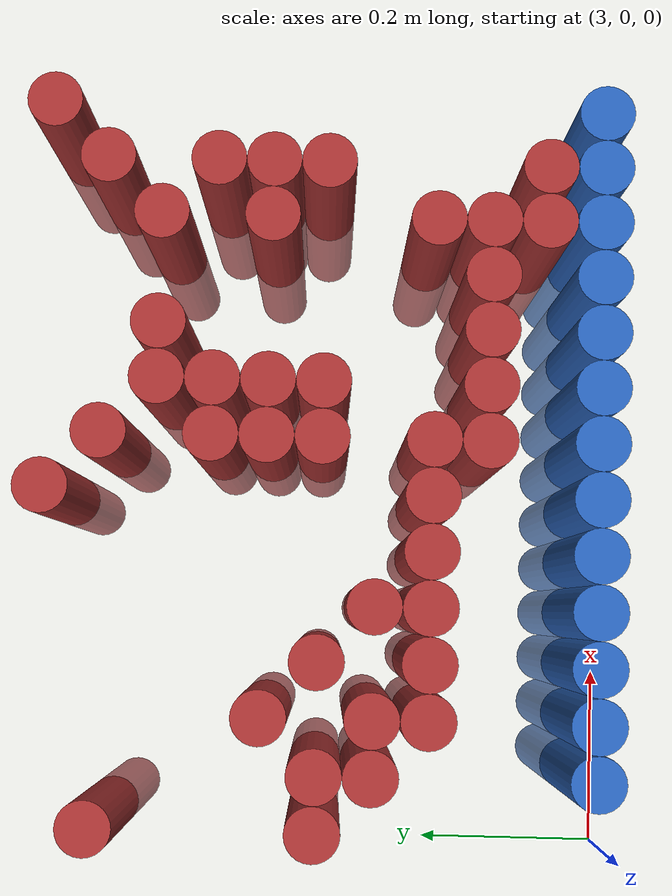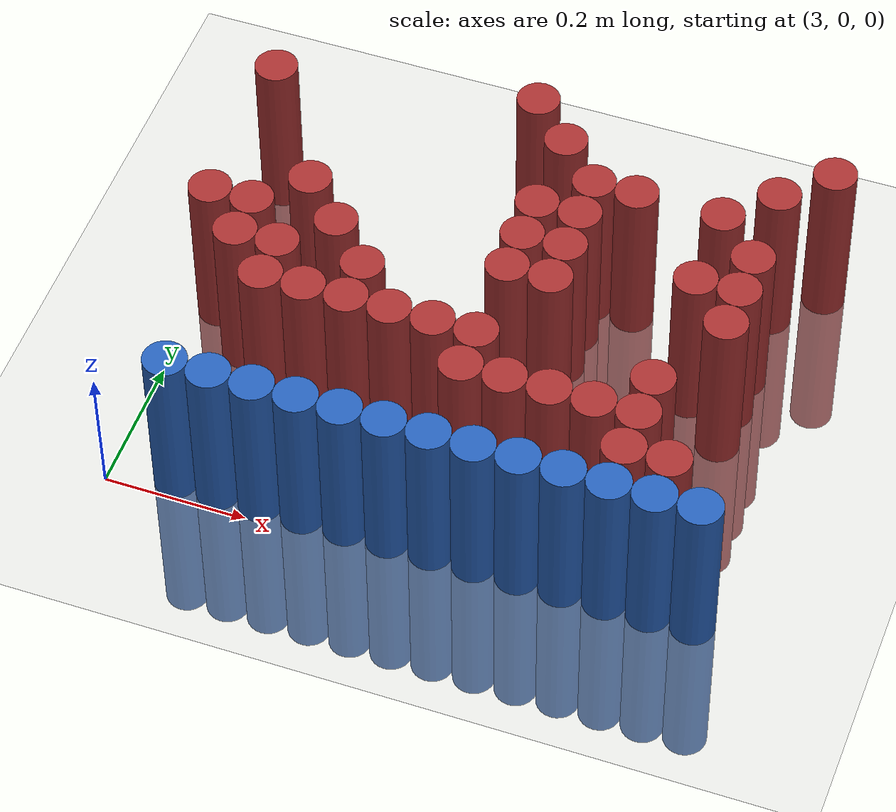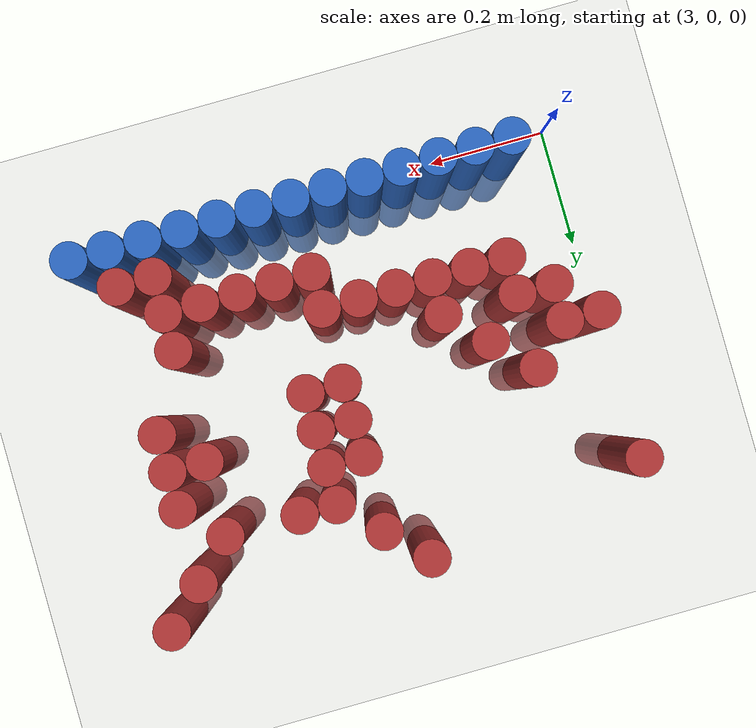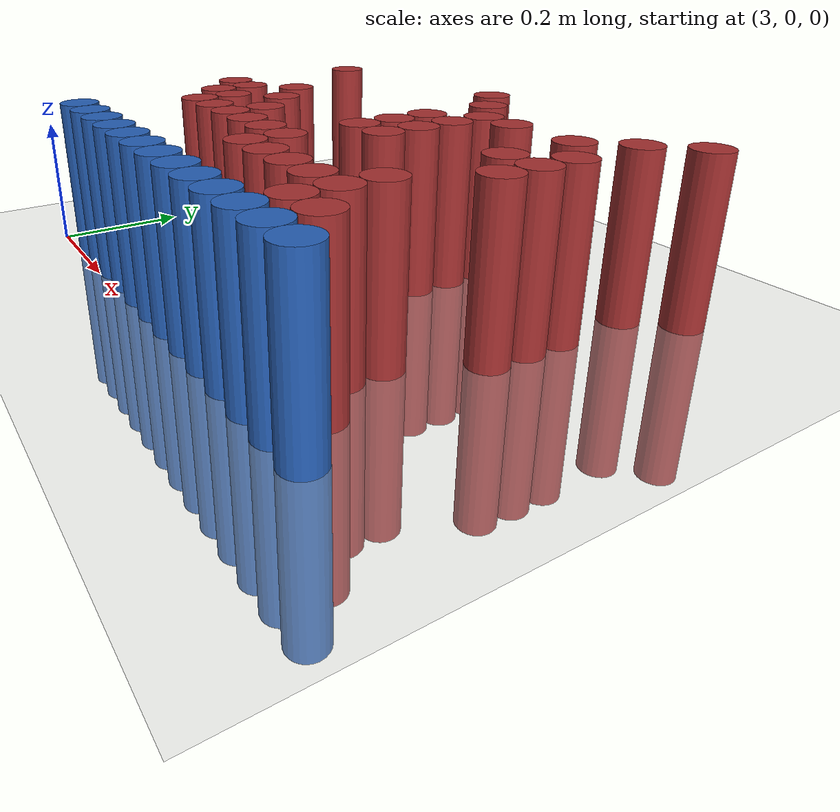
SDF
<sdf version="1.6">
 <world name="default">
  <model name="ground_plane">
   <static>1</static>
   <link name="link">
    <collision name="collision">
     <geometry><plane><normal>0 0 1</normal><size>100 100</size></plane></geometry>
     <surface><friction><ode><mu>100</mu><mu2>50</mu2></ode></friction></surface>
    </collision>
    <visual name="visual">
     <cast_shadows>0</cast_shadows>
     <geometry><plane><normal>0 0 1</normal><size>100 100</size></plane></geometry>
     <material>
      <script><uri>file://media/materials/scripts/gazebo.material</uri><name>Gazebo/Grey</name></script>
     </material>
    </visual>
   </link>
  </model>
  <model name="unit_cylinder_237">
   <static>1</static>
   <pose>3.390000 0.630000 0.000000 0.000000 0.000000 0.000000</pose>
   <link name="link">
    <inertial>
     <mass>1</mass>
     <inertia><ixx>0.145833</ixx><ixy>0</ixy><ixz>0</ixz><iyy>0.145833</iyy><iyz>0</iyz><izz>0.125</izz></inertia>
    </inertial>
    <collision name="collision">
     <geometry><cylinder><radius>0.030000</radius><length>0.5</length></cylinder></geometry>
    </collision>
    <visual name="visual">
     <geometry><cylinder><radius>0.030000</radius><length>0.5</length></cylinder></geometry>
     <material>
      <ambient>0.648000 0.192000 0.192000 1</ambient>
      <diffuse>0.648000 0.192000 0.192000 1</diffuse>
     </material>
     <material>
      <script><name>Gazebo/Grey</name><uri>file://media/materials/scripts/gazebo.material</uri></script>
     </material>
    </visual>
   </link>
  </model>
  <model name="unit_cylinder_238">
   <static>1</static>
   <pose>3.810000 0.630000 0.000000 0.000000 0.000000 0.000000</pose>
   <link name="link">
    <inertial>
     <mass>1</mass>
     <inertia><ixx>0.145833</ixx><ixy>0</ixy><ixz>0</ixz><iyy>0.145833</iyy><iyz>0</iyz><izz>0.125</izz></inertia>
    </inertial>
    <collision name="collision">
     <geometry><cylinder><radius>0.030000</radius><length>0.5</length></cylinder></geometry>
    </collision>
    <visual name="visual">
     <geometry><cylinder><radius>0.030000</radius><length>0.5</length></cylinder></geometry>
     <material>
      <ambient>0.648000 0.192000 0.192000 1</ambient>
      <diffuse>0.648000 0.192000 0.192000 1</diffuse>
     </material>
     <material>
      <script><name>Gazebo/Grey</name><uri>file://media/materials/scripts/gazebo.material</uri></script>
     </material>
    </visual>
   </link>
  </model>
  <model name="unit_cylinder_248">
   <static>1</static>
   <pose>3.030000 0.570000 0.000000 0.000000 0.000000 0.000000</pose>
   <link name="link">
    <inertial>
     <mass>1</mass>
     <inertia><ixx>0.145833</ixx><ixy>0</ixy><ixz>0</ixz><iyy>0.145833</iyy><iyz>0</iyz><izz>0.125</izz></inertia>
    </inertial>
    <collision name="collision">
     <geometry><cylinder><radius>0.030000</radius><length>0.5</length></cylinder></geometry>
    </collision>
    <visual name="visual">
     <geometry><cylinder><radius>0.030000</radius><length>0.5</length></cylinder></geometry>
     <material>
      <ambient>0.648000 0.192000 0.192000 1</ambient>
      <diffuse>0.648000 0.192000 0.192000 1</diffuse>
     </material>
     <material>
      <script><name>Gazebo/Grey</name><uri>file://media/materials/scripts/gazebo.material</uri></script>
     </material>
    </visual>
   </link>
  </model>
  <model name="unit_cylinder_249">
   <static>1</static>
   <pose>3.450000 0.570000 0.000000 0.000000 0.000000 0.000000</pose>
   <link name="link">
    <inertial>
     <mass>1</mass>
     <inertia><ixx>0.145833</ixx><ixy>0</ixy><ixz>0</ixz><iyy>0.145833</iyy><iyz>0</iyz><izz>0.125</izz></inertia>
    </inertial>
    <collision name="collision">
     <geometry><cylinder><radius>0.030000</radius><length>0.5</length></cylinder></geometry>
    </collision>
    <visual name="visual">
     <geometry><cylinder><radius>0.030000</radius><length>0.5</length></cylinder></geometry>
     <material>
      <ambient>0.648000 0.192000 0.192000 1</ambient>
      <diffuse>0.648000 0.192000 0.192000 1</diffuse>
     </material>
     <material>
      <script><name>Gazebo/Grey</name><uri>file://media/materials/scripts/gazebo.material</uri></script>
     </material>
    </visual>
   </link>
  </model>
  <model name="unit_cylinder_250">
   <static>1</static>
   <pose>3.750000 0.570000 0.000000 0.000000 0.000000 0.000000</pose>
   <link name="link">
    <inertial>
     <mass>1</mass>
     <inertia><ixx>0.145833</ixx><ixy>0</ixy><ixz>0</ixz><iyy>0.145833</iyy><iyz>0</iyz><izz>0.125</izz></inertia>
    </inertial>
    <collision name="collision">
     <geometry><cylinder><radius>0.030000</radius><length>0.5</length></cylinder></geometry>
    </collision>
    <visual name="visual">
     <geometry><cylinder><radius>0.030000</radius><length>0.5</length></cylinder></geometry>
     <material>
      <ambient>0.648000 0.192000 0.192000 1</ambient>
      <diffuse>0.648000 0.192000 0.192000 1</diffuse>
     </material>
     <material>
      <script><name>Gazebo/Grey</name><uri>file://media/materials/scripts/gazebo.material</uri></script>
     </material>
    </visual>
   </link>
  </model>
  <model name="unit_cylinder_261">
   <static>1</static>
   <pose>3.510000 0.510000 0.000000 0.000000 0.000000 0.000000</pose>
   <link name="link">
    <inertial>
     <mass>1</mass>
     <inertia><ixx>0.145833</ixx><ixy>0</ixy><ixz>0</ixz><iyy>0.145833</iyy><iyz>0</iyz><izz>0.125</izz></inertia>
    </inertial>
    <collision name="collision">
     <geometry><cylinder><radius>0.030000</radius><length>0.5</length></cylinder></geometry>
    </collision>
    <visual name="visual">
     <geometry><cylinder><radius>0.030000</radius><length>0.5</length></cylinder></geometry>
     <material>
      <ambient>0.648000 0.192000 0.192000 1</ambient>
      <diffuse>0.648000 0.192000 0.192000 1</diffuse>
     </material>
     <material>
      <script><name>Gazebo/Grey</name><uri>file://media/materials/scripts/gazebo.material</uri></script>
     </material>
    </visual>
   </link>
  </model>
  <model name="unit_cylinder_262">
   <static>1</static>
   <pose>3.570000 0.510000 0.000000 0.000000 0.000000 0.000000</pose>
   <link name="link">
    <inertial>
     <mass>1</mass>
     <inertia><ixx>0.145833</ixx><ixy>0</ixy><ixz>0</ixz><iyy>0.145833</iyy><iyz>0</iyz><izz>0.125</izz></inertia>
    </inertial>
    <collision name="collision">
     <geometry><cylinder><radius>0.030000</radius><length>0.5</length></cylinder></geometry>
    </collision>
    <visual name="visual">
     <geometry><cylinder><radius>0.030000</radius><length>0.5</length></cylinder></geometry>
     <material>
      <ambient>0.648000 0.192000 0.192000 1</ambient>
      <diffuse>0.648000 0.192000 0.192000 1</diffuse>
     </material>
     <material>
      <script><name>Gazebo/Grey</name><uri>file://media/materials/scripts/gazebo.material</uri></script>
     </material>
    </visual>
   </link>
  </model>
  <model name="unit_cylinder_263">
   <static>1</static>
   <pose>3.690000 0.510000 0.000000 0.000000 0.000000 0.000000</pose>
   <link name="link">
    <inertial>
     <mass>1</mass>
     <inertia><ixx>0.145833</ixx><ixy>0</ixy><ixz>0</ixz><iyy>0.145833</iyy><iyz>0</iyz><izz>0.125</izz></inertia>
    </inertial>
    <collision name="collision">
     <geometry><cylinder><radius>0.030000</radius><length>0.5</length></cylinder></geometry>
    </collision>
    <visual name="visual">
     <geometry><cylinder><radius>0.030000</radius><length>0.5</length></cylinder></geometry>
     <material>
      <ambient>0.648000 0.192000 0.192000 1</ambient>
      <diffuse>0.648000 0.192000 0.192000 1</diffuse>
     </material>
     <material>
      <script><name>Gazebo/Grey</name><uri>file://media/materials/scripts/gazebo.material</uri></script>
     </material>
    </visual>
   </link>
  </model>
  <model name="unit_cylinder_269">
   <static>1</static>
   <pose>3.450000 0.450000 0.000000 0.000000 0.000000 0.000000</pose>
   <link name="link">
    <inertial>
     <mass>1</mass>
     <inertia><ixx>0.145833</ixx><ixy>0</ixy><ixz>0</ixz><iyy>0.145833</iyy><iyz>0</iyz><izz>0.125</izz></inertia>
    </inertial>
    <collision name="collision">
     <geometry><cylinder><radius>0.030000</radius><length>0.5</length></cylinder></geometry>
    </collision>
    <visual name="visual">
     <geometry><cylinder><radius>0.030000</radius><length>0.5</length></cylinder></geometry>
     <material>
      <ambient>0.648000 0.192000 0.192000 1</ambient>
      <diffuse>0.648000 0.192000 0.192000 1</diffuse>
     </material>
     <material>
      <script><name>Gazebo/Grey</name><uri>file://media/materials/scripts/gazebo.material</uri></script>
     </material>
    </visual>
   </link>
  </model>
  <model name="unit_cylinder_270">
   <static>1</static>
   <pose>3.510000 0.450000 0.000000 0.000000 0.000000 0.000000</pose>
   <link name="link">
    <inertial>
     <mass>1</mass>
     <inertia><ixx>0.145833</ixx><ixy>0</ixy><ixz>0</ixz><iyy>0.145833</iyy><iyz>0</iyz><izz>0.125</izz></inertia>
    </inertial>
    <collision name="collision">
     <geometry><cylinder><radius>0.030000</radius><length>0.5</length></cylinder></geometry>
    </collision>
    <visual name="visual">
     <geometry><cylinder><radius>0.030000</radius><length>0.5</length></cylinder></geometry>
     <material>
      <ambient>0.648000 0.192000 0.192000 1</ambient>
      <diffuse>0.648000 0.192000 0.192000 1</diffuse>
     </material>
     <material>
      <script><name>Gazebo/Grey</name><uri>file://media/materials/scripts/gazebo.material</uri></script>
     </material>
    </visual>
   </link>
  </model>
  <model name="unit_cylinder_271">
   <static>1</static>
   <pose>3.750000 0.450000 0.000000 0.000000 0.000000 0.000000</pose>
   <link name="link">
    <inertial>
     <mass>1</mass>
     <inertia><ixx>0.145833</ixx><ixy>0</ixy><ixz>0</ixz><iyy>0.145833</iyy><iyz>0</iyz><izz>0.125</izz></inertia>
    </inertial>
    <collision name="collision">
     <geometry><cylinder><radius>0.030000</radius><length>0.5</length></cylinder></geometry>
    </collision>
    <visual name="visual">
     <geometry><cylinder><radius>0.030000</radius><length>0.5</length></cylinder></geometry>
     <material>
      <ambient>0.648000 0.192000 0.192000 1</ambient>
      <diffuse>0.648000 0.192000 0.192000 1</diffuse>
     </material>
     <material>
      <script><name>Gazebo/Grey</name><uri>file://media/materials/scripts/gazebo.material</uri></script>
     </material>
    </visual>
   </link>
  </model>
  <model name="unit_cylinder_275">
   <static>1</static>
   <pose>3.150000 0.390000 0.000000 0.000000 0.000000 0.000000</pose>
   <link name="link">
    <inertial>
     <mass>1</mass>
     <inertia><ixx>0.145833</ixx><ixy>0</ixy><ixz>0</ixz><iyy>0.145833</iyy><iyz>0</iyz><izz>0.125</izz></inertia>
    </inertial>
    <collision name="collision">
     <geometry><cylinder><radius>0.030000</radius><length>0.5</length></cylinder></geometry>
    </collision>
    <visual name="visual">
     <geometry><cylinder><radius>0.030000</radius><length>0.5</length></cylinder></geometry>
     <material>
      <ambient>0.648000 0.192000 0.192000 1</ambient>
      <diffuse>0.648000 0.192000 0.192000 1</diffuse>
     </material>
     <material>
      <script><name>Gazebo/Grey</name><uri>file://media/materials/scripts/gazebo.material</uri></script>
     </material>
    </visual>
   </link>
  </model>
  <model name="unit_cylinder_276">
   <static>1</static>
   <pose>3.450000 0.390000 0.000000 0.000000 0.000000 0.000000</pose>
   <link name="link">
    <inertial>
     <mass>1</mass>
     <inertia><ixx>0.145833</ixx><ixy>0</ixy><ixz>0</ixz><iyy>0.145833</iyy><iyz>0</iyz><izz>0.125</izz></inertia>
    </inertial>
    <collision name="collision">
     <geometry><cylinder><radius>0.030000</radius><length>0.5</length></cylinder></geometry>
    </collision>
    <visual name="visual">
     <geometry><cylinder><radius>0.030000</radius><length>0.5</length></cylinder></geometry>
     <material>
      <ambient>0.648000 0.192000 0.192000 1</ambient>
      <diffuse>0.648000 0.192000 0.192000 1</diffuse>
     </material>
     <material>
      <script><name>Gazebo/Grey</name><uri>file://media/materials/scripts/gazebo.material</uri></script>
     </material>
    </visual>
   </link>
  </model>
  <model name="unit_cylinder_277">
   <static>1</static>
   <pose>3.510000 0.390000 0.000000 0.000000 0.000000 0.000000</pose>
   <link name="link">
    <inertial>
     <mass>1</mass>
     <inertia><ixx>0.145833</ixx><ixy>0</ixy><ixz>0</ixz><iyy>0.145833</iyy><iyz>0</iyz><izz>0.125</izz></inertia>
    </inertial>
    <collision name="collision">
     <geometry><cylinder><radius>0.030000</radius><length>0.5</length></cylinder></geometry>
    </collision>
    <visual name="visual">
     <geometry><cylinder><radius>0.030000</radius><length>0.5</length></cylinder></geometry>
     <material>
      <ambient>0.648000 0.192000 0.192000 1</ambient>
      <diffuse>0.648000 0.192000 0.192000 1</diffuse>
     </material>
     <material>
      <script><name>Gazebo/Grey</name><uri>file://media/materials/scripts/gazebo.material</uri></script>
     </material>
    </visual>
   </link>
  </model>
  <model name="unit_cylinder_278">
   <static>1</static>
   <pose>3.690000 0.390000 0.000000 0.000000 0.000000 0.000000</pose>
   <link name="link">
    <inertial>
     <mass>1</mass>
     <inertia><ixx>0.145833</ixx><ixy>0</ixy><ixz>0</ixz><iyy>0.145833</iyy><iyz>0</iyz><izz>0.125</izz></inertia>
    </inertial>
    <collision name="collision">
     <geometry><cylinder><radius>0.030000</radius><length>0.5</length></cylinder></geometry>
    </collision>
    <visual name="visual">
     <geometry><cylinder><radius>0.030000</radius><length>0.5</length></cylinder></geometry>
     <material>
      <ambient>0.648000 0.192000 0.192000 1</ambient>
      <diffuse>0.648000 0.192000 0.192000 1</diffuse>
     </material>
     <material>
      <script><name>Gazebo/Grey</name><uri>file://media/materials/scripts/gazebo.material</uri></script>
     </material>
    </visual>
   </link>
  </model>
  <model name="unit_cylinder_279">
   <static>1</static>
   <pose>3.750000 0.390000 0.000000 0.000000 0.000000 0.000000</pose>
   <link name="link">
    <inertial>
     <mass>1</mass>
     <inertia><ixx>0.145833</ixx><ixy>0</ixy><ixz>0</ixz><iyy>0.145833</iyy><iyz>0</iyz><izz>0.125</izz></inertia>
    </inertial>
    <collision name="collision">
     <geometry><cylinder><radius>0.030000</radius><length>0.5</length></cylinder></geometry>
    </collision>
    <visual name="visual">
     <geometry><cylinder><radius>0.030000</radius><length>0.5</length></cylinder></geometry>
     <material>
      <ambient>0.648000 0.192000 0.192000 1</ambient>
      <diffuse>0.648000 0.192000 0.192000 1</diffuse>
     </material>
     <material>
      <script><name>Gazebo/Grey</name><uri>file://media/materials/scripts/gazebo.material</uri></script>
     </material>
    </visual>
   </link>
  </model>
  <model name="unit_cylinder_281">
   <static>1</static>
   <pose>3.030000 0.330000 0.000000 0.000000 0.000000 0.000000</pose>
   <link name="link">
    <inertial>
     <mass>1</mass>
     <inertia><ixx>0.145833</ixx><ixy>0</ixy><ixz>0</ixz><iyy>0.145833</iyy><iyz>0</iyz><izz>0.125</izz></inertia>
    </inertial>
    <collision name="collision">
     <geometry><cylinder><radius>0.030000</radius><length>0.5</length></cylinder></geometry>
    </collision>
    <visual name="visual">
     <geometry><cylinder><radius>0.030000</radius><length>0.5</length></cylinder></geometry>
     <material>
      <ambient>0.648000 0.192000 0.192000 1</ambient>
      <diffuse>0.648000 0.192000 0.192000 1</diffuse>
     </material>
     <material>
      <script><name>Gazebo/Grey</name><uri>file://media/materials/scripts/gazebo.material</uri></script>
     </material>
    </visual>
   </link>
  </model>
  <model name="unit_cylinder_282">
   <static>1</static>
   <pose>3.090000 0.330000 0.000000 0.000000 0.000000 0.000000</pose>
   <link name="link">
    <inertial>
     <mass>1</mass>
     <inertia><ixx>0.145833</ixx><ixy>0</ixy><ixz>0</ixz><iyy>0.145833</iyy><iyz>0</iyz><izz>0.125</izz></inertia>
    </inertial>
    <collision name="collision">
     <geometry><cylinder><radius>0.030000</radius><length>0.5</length></cylinder></geometry>
    </collision>
    <visual name="visual">
     <geometry><cylinder><radius>0.030000</radius><length>0.5</length></cylinder></geometry>
     <material>
      <ambient>0.648000 0.192000 0.192000 1</ambient>
      <diffuse>0.648000 0.192000 0.192000 1</diffuse>
     </material>
     <material>
      <script><name>Gazebo/Grey</name><uri>file://media/materials/scripts/gazebo.material</uri></script>
     </material>
    </visual>
   </link>
  </model>
  <model name="unit_cylinder_283">
   <static>1</static>
   <pose>3.210000 0.330000 0.000000 0.000000 0.000000 0.000000</pose>
   <link name="link">
    <inertial>
     <mass>1</mass>
     <inertia><ixx>0.145833</ixx><ixy>0</ixy><ixz>0</ixz><iyy>0.145833</iyy><iyz>0</iyz><izz>0.125</izz></inertia>
    </inertial>
    <collision name="collision">
     <geometry><cylinder><radius>0.030000</radius><length>0.5</length></cylinder></geometry>
    </collision>
    <visual name="visual">
     <geometry><cylinder><radius>0.030000</radius><length>0.5</length></cylinder></geometry>
     <material>
      <ambient>0.648000 0.192000 0.192000 1</ambient>
      <diffuse>0.648000 0.192000 0.192000 1</diffuse>
     </material>
     <material>
      <script><name>Gazebo/Grey</name><uri>file://media/materials/scripts/gazebo.material</uri></script>
     </material>
    </visual>
   </link>
  </model>
  <model name="unit_cylinder_284">
   <static>1</static>
   <pose>3.450000 0.330000 0.000000 0.000000 0.000000 0.000000</pose>
   <link name="link">
    <inertial>
     <mass>1</mass>
     <inertia><ixx>0.145833</ixx><ixy>0</ixy><ixz>0</ixz><iyy>0.145833</iyy><iyz>0</iyz><izz>0.125</izz></inertia>
    </inertial>
    <collision name="collision">
     <geometry><cylinder><radius>0.030000</radius><length>0.5</length></cylinder></geometry>
    </collision>
    <visual name="visual">
     <geometry><cylinder><radius>0.030000</radius><length>0.5</length></cylinder></geometry>
     <material>
      <ambient>0.648000 0.192000 0.192000 1</ambient>
      <diffuse>0.648000 0.192000 0.192000 1</diffuse>
     </material>
     <material>
      <script><name>Gazebo/Grey</name><uri>file://media/materials/scripts/gazebo.material</uri></script>
     </material>
    </visual>
   </link>
  </model>
  <model name="unit_cylinder_285">
   <static>1</static>
   <pose>3.510000 0.330000 0.000000 0.000000 0.000000 0.000000</pose>
   <link name="link">
    <inertial>
     <mass>1</mass>
     <inertia><ixx>0.145833</ixx><ixy>0</ixy><ixz>0</ixz><iyy>0.145833</iyy><iyz>0</iyz><izz>0.125</izz></inertia>
    </inertial>
    <collision name="collision">
     <geometry><cylinder><radius>0.030000</radius><length>0.5</length></cylinder></geometry>
    </collision>
    <visual name="visual">
     <geometry><cylinder><radius>0.030000</radius><length>0.5</length></cylinder></geometry>
     <material>
      <ambient>0.648000 0.192000 0.192000 1</ambient>
      <diffuse>0.648000 0.192000 0.192000 1</diffuse>
     </material>
     <material>
      <script><name>Gazebo/Grey</name><uri>file://media/materials/scripts/gazebo.material</uri></script>
     </material>
    </visual>
   </link>
  </model>
  <model name="unit_cylinder_286">
   <static>1</static>
   <pose>3.750000 0.330000 0.000000 0.000000 0.000000 0.000000</pose>
   <link name="link">
    <inertial>
     <mass>1</mass>
     <inertia><ixx>0.145833</ixx><ixy>0</ixy><ixz>0</ixz><iyy>0.145833</iyy><iyz>0</iyz><izz>0.125</izz></inertia>
    </inertial>
    <collision name="collision">
     <geometry><cylinder><radius>0.030000</radius><length>0.5</length></cylinder></geometry>
    </collision>
    <visual name="visual">
     <geometry><cylinder><radius>0.030000</radius><length>0.5</length></cylinder></geometry>
     <material>
      <ambient>0.648000 0.192000 0.192000 1</ambient>
      <diffuse>0.648000 0.192000 0.192000 1</diffuse>
     </material>
     <material>
      <script><name>Gazebo/Grey</name><uri>file://media/materials/scripts/gazebo.material</uri></script>
     </material>
    </visual>
   </link>
  </model>
  <model name="unit_cylinder_292">
   <static>1</static>
   <pose>3.090000 0.270000 0.000000 0.000000 0.000000 0.000000</pose>
   <link name="link">
    <inertial>
     <mass>1</mass>
     <inertia><ixx>0.145833</ixx><ixy>0</ixy><ixz>0</ixz><iyy>0.145833</iyy><iyz>0</iyz><izz>0.125</izz></inertia>
    </inertial>
    <collision name="collision">
     <geometry><cylinder><radius>0.030000</radius><length>0.5</length></cylinder></geometry>
    </collision>
    <visual name="visual">
     <geometry><cylinder><radius>0.030000</radius><length>0.5</length></cylinder></geometry>
     <material>
      <ambient>0.648000 0.192000 0.192000 1</ambient>
      <diffuse>0.648000 0.192000 0.192000 1</diffuse>
     </material>
     <material>
      <script><name>Gazebo/Grey</name><uri>file://media/materials/scripts/gazebo.material</uri></script>
     </material>
    </visual>
   </link>
  </model>
  <model name="unit_cylinder_293">
   <static>1</static>
   <pose>3.150000 0.270000 0.000000 0.000000 0.000000 0.000000</pose>
   <link name="link">
    <inertial>
     <mass>1</mass>
     <inertia><ixx>0.145833</ixx><ixy>0</ixy><ixz>0</ixz><iyy>0.145833</iyy><iyz>0</iyz><izz>0.125</izz></inertia>
    </inertial>
    <collision name="collision">
     <geometry><cylinder><radius>0.030000</radius><length>0.5</length></cylinder></geometry>
    </collision>
    <visual name="visual">
     <geometry><cylinder><radius>0.030000</radius><length>0.5</length></cylinder></geometry>
     <material>
      <ambient>0.648000 0.192000 0.192000 1</ambient>
      <diffuse>0.648000 0.192000 0.192000 1</diffuse>
     </material>
     <material>
      <script><name>Gazebo/Grey</name><uri>file://media/materials/scripts/gazebo.material</uri></script>
     </material>
    </visual>
   </link>
  </model>
  <model name="unit_cylinder_294">
   <static>1</static>
   <pose>3.270000 0.270000 0.000000 0.000000 0.000000 0.000000</pose>
   <link name="link">
    <inertial>
     <mass>1</mass>
     <inertia><ixx>0.145833</ixx><ixy>0</ixy><ixz>0</ixz><iyy>0.145833</iyy><iyz>0</iyz><izz>0.125</izz></inertia>
    </inertial>
    <collision name="collision">
     <geometry><cylinder><radius>0.030000</radius><length>0.5</length></cylinder></geometry>
    </collision>
    <visual name="visual">
     <geometry><cylinder><radius>0.030000</radius><length>0.5</length></cylinder></geometry>
     <material>
      <ambient>0.648000 0.192000 0.192000 1</ambient>
      <diffuse>0.648000 0.192000 0.192000 1</diffuse>
     </material>
     <material>
      <script><name>Gazebo/Grey</name><uri>file://media/materials/scripts/gazebo.material</uri></script>
     </material>
    </visual>
   </link>
  </model>
  <model name="unit_cylinder_301">
   <static>1</static>
   <pose>3.150000 0.210000 0.000000 0.000000 0.000000 0.000000</pose>
   <link name="link">
    <inertial>
     <mass>1</mass>
     <inertia><ixx>0.145833</ixx><ixy>0</ixy><ixz>0</ixz><iyy>0.145833</iyy><iyz>0</iyz><izz>0.125</izz></inertia>
    </inertial>
    <collision name="collision">
     <geometry><cylinder><radius>0.030000</radius><length>0.5</length></cylinder></geometry>
    </collision>
    <visual name="visual">
     <geometry><cylinder><radius>0.030000</radius><length>0.5</length></cylinder></geometry>
     <material>
      <ambient>0.648000 0.192000 0.192000 1</ambient>
      <diffuse>0.648000 0.192000 0.192000 1</diffuse>
     </material>
     <material>
      <script><name>Gazebo/Grey</name><uri>file://media/materials/scripts/gazebo.material</uri></script>
     </material>
    </visual>
   </link>
  </model>
  <model name="unit_cylinder_302">
   <static>1</static>
   <pose>3.210000 0.210000 0.000000 0.000000 0.000000 0.000000</pose>
   <link name="link">
    <inertial>
     <mass>1</mass>
     <inertia><ixx>0.145833</ixx><ixy>0</ixy><ixz>0</ixz><iyy>0.145833</iyy><iyz>0</iyz><izz>0.125</izz></inertia>
    </inertial>
    <collision name="collision">
     <geometry><cylinder><radius>0.030000</radius><length>0.5</length></cylinder></geometry>
    </collision>
    <visual name="visual">
     <geometry><cylinder><radius>0.030000</radius><length>0.5</length></cylinder></geometry>
     <material>
      <ambient>0.648000 0.192000 0.192000 1</ambient>
      <diffuse>0.648000 0.192000 0.192000 1</diffuse>
     </material>
     <material>
      <script><name>Gazebo/Grey</name><uri>file://media/materials/scripts/gazebo.material</uri></script>
     </material>
    </visual>
   </link>
  </model>
  <model name="unit_cylinder_303">
   <static>1</static>
   <pose>3.270000 0.210000 0.000000 0.000000 0.000000 0.000000</pose>
   <link name="link">
    <inertial>
     <mass>1</mass>
     <inertia><ixx>0.145833</ixx><ixy>0</ixy><ixz>0</ixz><iyy>0.145833</iyy><iyz>0</iyz><izz>0.125</izz></inertia>
    </inertial>
    <collision name="collision">
     <geometry><cylinder><radius>0.030000</radius><length>0.5</length></cylinder></geometry>
    </collision>
    <visual name="visual">
     <geometry><cylinder><radius>0.030000</radius><length>0.5</length></cylinder></geometry>
     <material>
      <ambient>0.648000 0.192000 0.192000 1</ambient>
      <diffuse>0.648000 0.192000 0.192000 1</diffuse>
     </material>
     <material>
      <script><name>Gazebo/Grey</name><uri>file://media/materials/scripts/gazebo.material</uri></script>
     </material>
    </visual>
   </link>
  </model>
  <model name="unit_cylinder_304">
   <static>1</static>
   <pose>3.330000 0.210000 0.000000 0.000000 0.000000 0.000000</pose>
   <link name="link">
    <inertial>
     <mass>1</mass>
     <inertia><ixx>0.145833</ixx><ixy>0</ixy><ixz>0</ixz><iyy>0.145833</iyy><iyz>0</iyz><izz>0.125</izz></inertia>
    </inertial>
    <collision name="collision">
     <geometry><cylinder><radius>0.030000</radius><length>0.5</length></cylinder></geometry>
    </collision>
    <visual name="visual">
     <geometry><cylinder><radius>0.030000</radius><length>0.5</length></cylinder></geometry>
     <material>
      <ambient>0.648000 0.192000 0.192000 1</ambient>
      <diffuse>0.648000 0.192000 0.192000 1</diffuse>
     </material>
     <material>
      <script><name>Gazebo/Grey</name><uri>file://media/materials/scripts/gazebo.material</uri></script>
     </material>
    </visual>
   </link>
  </model>
  <model name="unit_cylinder_305">
   <static>1</static>
   <pose>3.390000 0.210000 0.000000 0.000000 0.000000 0.000000</pose>
   <link name="link">
    <inertial>
     <mass>1</mass>
     <inertia><ixx>0.145833</ixx><ixy>0</ixy><ixz>0</ixz><iyy>0.145833</iyy><iyz>0</iyz><izz>0.125</izz></inertia>
    </inertial>
    <collision name="collision">
     <geometry><cylinder><radius>0.030000</radius><length>0.5</length></cylinder></geometry>
    </collision>
    <visual name="visual">
     <geometry><cylinder><radius>0.030000</radius><length>0.5</length></cylinder></geometry>
     <material>
      <ambient>0.648000 0.192000 0.192000 1</ambient>
      <diffuse>0.648000 0.192000 0.192000 1</diffuse>
     </material>
     <material>
      <script><name>Gazebo/Grey</name><uri>file://media/materials/scripts/gazebo.material</uri></script>
     </material>
    </visual>
   </link>
  </model>
  <model name="unit_cylinder_306">
   <static>1</static>
   <pose>3.450000 0.210000 0.000000 0.000000 0.000000 0.000000</pose>
   <link name="link">
    <inertial>
     <mass>1</mass>
     <inertia><ixx>0.145833</ixx><ixy>0</ixy><ixz>0</ixz><iyy>0.145833</iyy><iyz>0</iyz><izz>0.125</izz></inertia>
    </inertial>
    <collision name="collision">
     <geometry><cylinder><radius>0.030000</radius><length>0.5</length></cylinder></geometry>
    </collision>
    <visual name="visual">
     <geometry><cylinder><radius>0.030000</radius><length>0.5</length></cylinder></geometry>
     <material>
      <ambient>0.648000 0.192000 0.192000 1</ambient>
      <diffuse>0.648000 0.192000 0.192000 1</diffuse>
     </material>
     <material>
      <script><name>Gazebo/Grey</name><uri>file://media/materials/scripts/gazebo.material</uri></script>
     </material>
    </visual>
   </link>
  </model>
  <model name="unit_cylinder_307">
   <static>1</static>
   <pose>3.690000 0.210000 0.000000 0.000000 0.000000 0.000000</pose>
   <link name="link">
    <inertial>
     <mass>1</mass>
     <inertia><ixx>0.145833</ixx><ixy>0</ixy><ixz>0</ixz><iyy>0.145833</iyy><iyz>0</iyz><izz>0.125</izz></inertia>
    </inertial>
    <collision name="collision">
     <geometry><cylinder><radius>0.030000</radius><length>0.5</length></cylinder></geometry>
    </collision>
    <visual name="visual">
     <geometry><cylinder><radius>0.030000</radius><length>0.5</length></cylinder></geometry>
     <material>
      <ambient>0.648000 0.192000 0.192000 1</ambient>
      <diffuse>0.648000 0.192000 0.192000 1</diffuse>
     </material>
     <material>
      <script><name>Gazebo/Grey</name><uri>file://media/materials/scripts/gazebo.material</uri></script>
     </material>
    </visual>
   </link>
  </model>
  <model name="unit_cylinder_317">
   <static>1</static>
   <pose>3.450000 0.150000 0.000000 0.000000 0.000000 0.000000</pose>
   <link name="link">
    <inertial>
     <mass>1</mass>
     <inertia><ixx>0.145833</ixx><ixy>0</ixy><ixz>0</ixz><iyy>0.145833</iyy><iyz>0</iyz><izz>0.125</izz></inertia>
    </inertial>
    <collision name="collision">
     <geometry><cylinder><radius>0.030000</radius><length>0.5</length></cylinder></geometry>
    </collision>
    <visual name="visual">
     <geometry><cylinder><radius>0.030000</radius><length>0.5</length></cylinder></geometry>
     <material>
      <ambient>0.648000 0.192000 0.192000 1</ambient>
      <diffuse>0.648000 0.192000 0.192000 1</diffuse>
     </material>
     <material>
      <script><name>Gazebo/Grey</name><uri>file://media/materials/scripts/gazebo.material</uri></script>
     </material>
    </visual>
   </link>
  </model>
  <model name="unit_cylinder_318">
   <static>1</static>
   <pose>3.510000 0.150000 0.000000 0.000000 0.000000 0.000000</pose>
   <link name="link">
    <inertial>
     <mass>1</mass>
     <inertia><ixx>0.145833</ixx><ixy>0</ixy><ixz>0</ixz><iyy>0.145833</iyy><iyz>0</iyz><izz>0.125</izz></inertia>
    </inertial>
    <collision name="collision">
     <geometry><cylinder><radius>0.030000</radius><length>0.5</length></cylinder></geometry>
    </collision>
    <visual name="visual">
     <geometry><cylinder><radius>0.030000</radius><length>0.5</length></cylinder></geometry>
     <material>
      <ambient>0.648000 0.192000 0.192000 1</ambient>
      <diffuse>0.648000 0.192000 0.192000 1</diffuse>
     </material>
     <material>
      <script><name>Gazebo/Grey</name><uri>file://media/materials/scripts/gazebo.material</uri></script>
     </material>
    </visual>
   </link>
  </model>
  <model name="unit_cylinder_319">
   <static>1</static>
   <pose>3.570000 0.150000 0.000000 0.000000 0.000000 0.000000</pose>
   <link name="link">
    <inertial>
     <mass>1</mass>
     <inertia><ixx>0.145833</ixx><ixy>0</ixy><ixz>0</ixz><iyy>0.145833</iyy><iyz>0</iyz><izz>0.125</izz></inertia>
    </inertial>
    <collision name="collision">
     <geometry><cylinder><radius>0.030000</radius><length>0.5</length></cylinder></geometry>
    </collision>
    <visual name="visual">
     <geometry><cylinder><radius>0.030000</radius><length>0.5</length></cylinder></geometry>
     <material>
      <ambient>0.648000 0.192000 0.192000 1</ambient>
      <diffuse>0.648000 0.192000 0.192000 1</diffuse>
     </material>
     <material>
      <script><name>Gazebo/Grey</name><uri>file://media/materials/scripts/gazebo.material</uri></script>
     </material>
    </visual>
   </link>
  </model>
  <model name="unit_cylinder_320">
   <static>1</static>
   <pose>3.630000 0.150000 0.000000 0.000000 0.000000 0.000000</pose>
   <link name="link">
    <inertial>
     <mass>1</mass>
     <inertia><ixx>0.145833</ixx><ixy>0</ixy><ixz>0</ixz><iyy>0.145833</iyy><iyz>0</iyz><izz>0.125</izz></inertia>
    </inertial>
    <collision name="collision">
     <geometry><cylinder><radius>0.030000</radius><length>0.5</length></cylinder></geometry>
    </collision>
    <visual name="visual">
     <geometry><cylinder><radius>0.030000</radius><length>0.5</length></cylinder></geometry>
     <material>
      <ambient>0.648000 0.192000 0.192000 1</ambient>
      <diffuse>0.648000 0.192000 0.192000 1</diffuse>
     </material>
     <material>
      <script><name>Gazebo/Grey</name><uri>file://media/materials/scripts/gazebo.material</uri></script>
     </material>
    </visual>
   </link>
  </model>
  <model name="unit_cylinder_321">
   <static>1</static>
   <pose>3.690000 0.150000 0.000000 0.000000 0.000000 0.000000</pose>
   <link name="link">
    <inertial>
     <mass>1</mass>
     <inertia><ixx>0.145833</ixx><ixy>0</ixy><ixz>0</ixz><iyy>0.145833</iyy><iyz>0</iyz><izz>0.125</izz></inertia>
    </inertial>
    <collision name="collision">
     <geometry><cylinder><radius>0.030000</radius><length>0.5</length></cylinder></geometry>
    </collision>
    <visual name="visual">
     <geometry><cylinder><radius>0.030000</radius><length>0.5</length></cylinder></geometry>
     <material>
      <ambient>0.648000 0.192000 0.192000 1</ambient>
      <diffuse>0.648000 0.192000 0.192000 1</diffuse>
     </material>
     <material>
      <script><name>Gazebo/Grey</name><uri>file://media/materials/scripts/gazebo.material</uri></script>
     </material>
    </visual>
   </link>
  </model>
  <model name="unit_cylinder_332">
   <static>1</static>
   <pose>3.690000 0.090000 0.000000 0.000000 0.000000 0.000000</pose>
   <link name="link">
    <inertial>
     <mass>1</mass>
     <inertia><ixx>0.145833</ixx><ixy>0</ixy><ixz>0</ixz><iyy>0.145833</iyy><iyz>0</iyz><izz>0.125</izz></inertia>
    </inertial>
    <collision name="collision">
     <geometry><cylinder><radius>0.030000</radius><length>0.5</length></cylinder></geometry>
    </collision>
    <visual name="visual">
     <geometry><cylinder><radius>0.030000</radius><length>0.5</length></cylinder></geometry>
     <material>
      <ambient>0.648000 0.192000 0.192000 1</ambient>
      <diffuse>0.648000 0.192000 0.192000 1</diffuse>
     </material>
     <material>
      <script><name>Gazebo/Grey</name><uri>file://media/materials/scripts/gazebo.material</uri></script>
     </material>
    </visual>
   </link>
  </model>
  <model name="unit_cylinder_333">
   <static>1</static>
   <pose>3.750000 0.090000 0.000000 0.000000 0.000000 0.000000</pose>
   <link name="link">
    <inertial>
     <mass>1</mass>
     <inertia><ixx>0.145833</ixx><ixy>0</ixy><ixz>0</ixz><iyy>0.145833</iyy><iyz>0</iyz><izz>0.125</izz></inertia>
    </inertial>
    <collision name="collision">
     <geometry><cylinder><radius>0.030000</radius><length>0.5</length></cylinder></geometry>
    </collision>
    <visual name="visual">
     <geometry><cylinder><radius>0.030000</radius><length>0.5</length></cylinder></geometry>
     <material>
      <ambient>0.648000 0.192000 0.192000 1</ambient>
      <diffuse>0.648000 0.192000 0.192000 1</diffuse>
     </material>
     <material>
      <script><name>Gazebo/Grey</name><uri>file://media/materials/scripts/gazebo.material</uri></script>
     </material>
    </visual>
   </link>
  </model>
  <model name="unit_cylinder_351">
   <static>1</static>
   <pose>3.090000 0.030000 0.000000 0.000000 0.000000 0.000000</pose>
   <link name="link">
    <inertial>
     <mass>1</mass>
     <inertia><ixx>0.145833</ixx><ixy>0</ixy><ixz>0</ixz><iyy>0.145833</iyy><iyz>0</iyz><izz>0.125</izz></inertia>
    </inertial>
    <collision name="collision">
     <geometry><cylinder><radius>0.030000</radius><length>0.5</length></cylinder></geometry>
    </collision>
    <visual name="visual">
     <geometry><cylinder><radius>0.030000</radius><length>0.5</length></cylinder></geometry>
     <material>
      <ambient>0.152000 0.379000 0.720000 1</ambient>
      <diffuse>0.152000 0.379000 0.720000 1</diffuse>
     </material>
     <material>
      <script><name>Gazebo/Grey</name><uri>file://media/materials/scripts/gazebo.material</uri></script>
     </material>
    </visual>
   </link>
  </model>
  <model name="unit_cylinder_352">
   <static>1</static>
   <pose>3.150000 0.030000 0.000000 0.000000 0.000000 0.000000</pose>
   <link name="link">
    <inertial>
     <mass>1</mass>
     <inertia><ixx>0.145833</ixx><ixy>0</ixy><ixz>0</ixz><iyy>0.145833</iyy><iyz>0</iyz><izz>0.125</izz></inertia>
    </inertial>
    <collision name="collision">
     <geometry><cylinder><radius>0.030000</radius><length>0.5</length></cylinder></geometry>
    </collision>
    <visual name="visual">
     <geometry><cylinder><radius>0.030000</radius><length>0.5</length></cylinder></geometry>
     <material>
      <ambient>0.152000 0.379000 0.720000 1</ambient>
      <diffuse>0.152000 0.379000 0.720000 1</diffuse>
     </material>
     <material>
      <script><name>Gazebo/Grey</name><uri>file://media/materials/scripts/gazebo.material</uri></script>
     </material>
    </visual>
   </link>
  </model>
  <model name="unit_cylinder_353">
   <static>1</static>
   <pose>3.210000 0.030000 0.000000 0.000000 0.000000 0.000000</pose>
   <link name="link">
    <inertial>
     <mass>1</mass>
     <inertia><ixx>0.145833</ixx><ixy>0</ixy><ixz>0</ixz><iyy>0.145833</iyy><iyz>0</iyz><izz>0.125</izz></inertia>
    </inertial>
    <collision name="collision">
     <geometry><cylinder><radius>0.030000</radius><length>0.5</length></cylinder></geometry>
    </collision>
    <visual name="visual">
     <geometry><cylinder><radius>0.030000</radius><length>0.5</length></cylinder></geometry>
     <material>
      <ambient>0.152000 0.379000 0.720000 1</ambient>
      <diffuse>0.152000 0.379000 0.720000 1</diffuse>
     </material>
     <material>
      <script><name>Gazebo/Grey</name><uri>file://media/materials/scripts/gazebo.material</uri></script>
     </material>
    </visual>
   </link>
  </model>
  <model name="unit_cylinder_354">
   <static>1</static>
   <pose>3.270000 0.030000 0.000000 0.000000 0.000000 0.000000</pose>
   <link name="link">
    <inertial>
     <mass>1</mass>
     <inertia><ixx>0.145833</ixx><ixy>0</ixy><ixz>0</ixz><iyy>0.145833</iyy><iyz>0</iyz><izz>0.125</izz></inertia>
    </inertial>
    <collision name="collision">
     <geometry><cylinder><radius>0.030000</radius><length>0.5</length></cylinder></geometry>
    </collision>
    <visual name="visual">
     <geometry><cylinder><radius>0.030000</radius><length>0.5</length></cylinder></geometry>
     <material>
      <ambient>0.152000 0.379000 0.720000 1</ambient>
      <diffuse>0.152000 0.379000 0.720000 1</diffuse>
     </material>
     <material>
      <script><name>Gazebo/Grey</name><uri>file://media/materials/scripts/gazebo.material</uri></script>
     </material>
    </visual>
   </link>
  </model>
  <model name="unit_cylinder_355">
   <static>1</static>
   <pose>3.330000 0.030000 0.000000 0.000000 0.000000 0.000000</pose>
   <link name="link">
    <inertial>
     <mass>1</mass>
     <inertia><ixx>0.145833</ixx><ixy>0</ixy><ixz>0</ixz><iyy>0.145833</iyy><iyz>0</iyz><izz>0.125</izz></inertia>
    </inertial>
    <collision name="collision">
     <geometry><cylinder><radius>0.030000</radius><length>0.5</length></cylinder></geometry>
    </collision>
    <visual name="visual">
     <geometry><cylinder><radius>0.030000</radius><length>0.5</length></cylinder></geometry>
     <material>
      <ambient>0.152000 0.379000 0.720000 1</ambient>
      <diffuse>0.152000 0.379000 0.720000 1</diffuse>
     </material>
     <material>
      <script><name>Gazebo/Grey</name><uri>file://media/materials/scripts/gazebo.material</uri></script>
     </material>
    </visual>
   </link>
  </model>
  <model name="unit_cylinder_356">
   <static>1</static>
   <pose>3.390000 0.030000 0.000000 0.000000 0.000000 0.000000</pose>
   <link name="link">
    <inertial>
     <mass>1</mass>
     <inertia><ixx>0.145833</ixx><ixy>0</ixy><ixz>0</ixz><iyy>0.145833</iyy><iyz>0</iyz><izz>0.125</izz></inertia>
    </inertial>
    <collision name="collision">
     <geometry><cylinder><radius>0.030000</radius><length>0.5</length></cylinder></geometry>
    </collision>
    <visual name="visual">
     <geometry><cylinder><radius>0.030000</radius><length>0.5</length></cylinder></geometry>
     <material>
      <ambient>0.152000 0.379000 0.720000 1</ambient>
      <diffuse>0.152000 0.379000 0.720000 1</diffuse>
     </material>
     <material>
      <script><name>Gazebo/Grey</name><uri>file://media/materials/scripts/gazebo.material</uri></script>
     </material>
    </visual>
   </link>
  </model>
  <model name="unit_cylinder_357">
   <static>1</static>
   <pose>3.450000 0.030000 0.000000 0.000000 0.000000 0.000000</pose>
   <link name="link">
    <inertial>
     <mass>1</mass>
     <inertia><ixx>0.145833</ixx><ixy>0</ixy><ixz>0</ixz><iyy>0.145833</iyy><iyz>0</iyz><izz>0.125</izz></inertia>
    </inertial>
    <collision name="collision">
     <geometry><cylinder><radius>0.030000</radius><length>0.5</length></cylinder></geometry>
    </collision>
    <visual name="visual">
     <geometry><cylinder><radius>0.030000</radius><length>0.5</length></cylinder></geometry>
     <material>
      <ambient>0.152000 0.379000 0.720000 1</ambient>
      <diffuse>0.152000 0.379000 0.720000 1</diffuse>
     </material>
     <material>
      <script><name>Gazebo/Grey</name><uri>file://media/materials/scripts/gazebo.material</uri></script>
     </material>
    </visual>
   </link>
  </model>
  <model name="unit_cylinder_358">
   <static>1</static>
   <pose>3.510000 0.030000 0.000000 0.000000 0.000000 0.000000</pose>
   <link name="link">
    <inertial>
     <mass>1</mass>
     <inertia><ixx>0.145833</ixx><ixy>0</ixy><ixz>0</ixz><iyy>0.145833</iyy><iyz>0</iyz><izz>0.125</izz></inertia>
    </inertial>
    <collision name="collision">
     <geometry><cylinder><radius>0.030000</radius><length>0.5</length></cylinder></geometry>
    </collision>
    <visual name="visual">
     <geometry><cylinder><radius>0.030000</radius><length>0.5</length></cylinder></geometry>
     <material>
      <ambient>0.152000 0.379000 0.720000 1</ambient>
      <diffuse>0.152000 0.379000 0.720000 1</diffuse>
     </material>
     <material>
      <script><name>Gazebo/Grey</name><uri>file://media/materials/scripts/gazebo.material</uri></script>
     </material>
    </visual>
   </link>
  </model>
  <model name="unit_cylinder_359">
   <static>1</static>
   <pose>3.570000 0.030000 0.000000 0.000000 0.000000 0.000000</pose>
   <link name="link">
    <inertial>
     <mass>1</mass>
     <inertia><ixx>0.145833</ixx><ixy>0</ixy><ixz>0</ixz><iyy>0.145833</iyy><iyz>0</iyz><izz>0.125</izz></inertia>
    </inertial>
    <collision name="collision">
     <geometry><cylinder><radius>0.030000</radius><length>0.5</length></cylinder></geometry>
    </collision>
    <visual name="visual">
     <geometry><cylinder><radius>0.030000</radius><length>0.5</length></cylinder></geometry>
     <material>
      <ambient>0.152000 0.379000 0.720000 1</ambient>
      <diffuse>0.152000 0.379000 0.720000 1</diffuse>
     </material>
     <material>
      <script><name>Gazebo/Grey</name><uri>file://media/materials/scripts/gazebo.material</uri></script>
     </material>
    </visual>
   </link>
  </model>
  <model name="unit_cylinder_360">
   <static>1</static>
   <pose>3.630000 0.030000 0.000000 0.000000 0.000000 0.000000</pose>
   <link name="link">
    <inertial>
     <mass>1</mass>
     <inertia><ixx>0.145833</ixx><ixy>0</ixy><ixz>0</ixz><iyy>0.145833</iyy><iyz>0</iyz><izz>0.125</izz></inertia>
    </inertial>
    <collision name="collision">
     <geometry><cylinder><radius>0.030000</radius><length>0.5</length></cylinder></geometry>
    </collision>
    <visual name="visual">
     <geometry><cylinder><radius>0.030000</radius><length>0.5</length></cylinder></geometry>
     <material>
      <ambient>0.152000 0.379000 0.720000 1</ambient>
      <diffuse>0.152000 0.379000 0.720000 1</diffuse>
     </material>
     <material>
      <script><name>Gazebo/Grey</name><uri>file://media/materials/scripts/gazebo.material</uri></script>
     </material>
    </visual>
   </link>
  </model>
  <model name="unit_cylinder_361">
   <static>1</static>
   <pose>3.690000 0.030000 0.000000 0.000000 0.000000 0.000000</pose>
   <link name="link">
    <inertial>
     <mass>1</mass>
     <inertia><ixx>0.145833</ixx><ixy>0</ixy><ixz>0</ixz><iyy>0.145833</iyy><iyz>0</iyz><izz>0.125</izz></inertia>
    </inertial>
    <collision name="collision">
     <geometry><cylinder><radius>0.030000</radius><length>0.5</length></cylinder></geometry>
    </collision>
    <visual name="visual">
     <geometry><cylinder><radius>0.030000</radius><length>0.5</length></cylinder></geometry>
     <material>
      <ambient>0.152000 0.379000 0.720000 1</ambient>
      <diffuse>0.152000 0.379000 0.720000 1</diffuse>
     </material>
     <material>
      <script><name>Gazebo/Grey</name><uri>file://media/materials/scripts/gazebo.material</uri></script>
     </material>
    </visual>
   </link>
  </model>
  <model name="unit_cylinder_362">
   <static>1</static>
   <pose>3.750000 0.030000 0.000000 0.000000 0.000000 0.000000</pose>
   <link name="link">
    <inertial>
     <mass>1</mass>
     <inertia><ixx>0.145833</ixx><ixy>0</ixy><ixz>0</ixz><iyy>0.145833</iyy><iyz>0</iyz><izz>0.125</izz></inertia>
    </inertial>
    <collision name="collision">
     <geometry><cylinder><radius>0.030000</radius><length>0.5</length></cylinder></geometry>
    </collision>
    <visual name="visual">
     <geometry><cylinder><radius>0.030000</radius><length>0.5</length></cylinder></geometry>
     <material>
      <ambient>0.152000 0.379000 0.720000 1</ambient>
      <diffuse>0.152000 0.379000 0.720000 1</diffuse>
     </material>
     <material>
      <script><name>Gazebo/Grey</name><uri>file://media/materials/scripts/gazebo.material</uri></script>
     </material>
    </visual>
   </link>
  </model>
  <model name="unit_cylinder_363">
   <static>1</static>
   <pose>3.810000 0.030000 0.000000 0.000000 0.000000 0.000000</pose>
   <link name="link">
    <inertial>
     <mass>1</mass>
     <inertia><ixx>0.145833</ixx><ixy>0</ixy><ixz>0</ixz><iyy>0.145833</iyy><iyz>0</iyz><izz>0.125</izz></inertia>
    </inertial>
    <collision name="collision">
     <geometry><cylinder><radius>0.030000</radius><length>0.5</length></cylinder></geometry>
    </collision>
    <visual name="visual">
     <geometry><cylinder><radius>0.030000</radius><length>0.5</length></cylinder></geometry>
     <material>
      <ambient>0.152000 0.379000 0.720000 1</ambient>
      <diffuse>0.152000 0.379000 0.720000 1</diffuse>
     </material>
     <material>
      <script><name>Gazebo/Grey</name><uri>file://media/materials/scripts/gazebo.material</uri></script>
     </material>
    </visual>
   </link>
  </model>
 </world>
</sdf>
